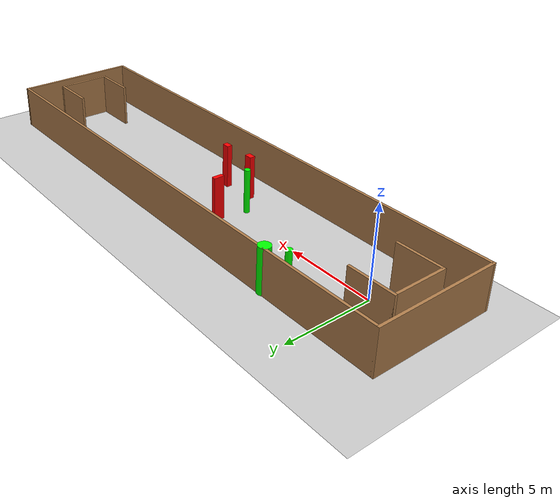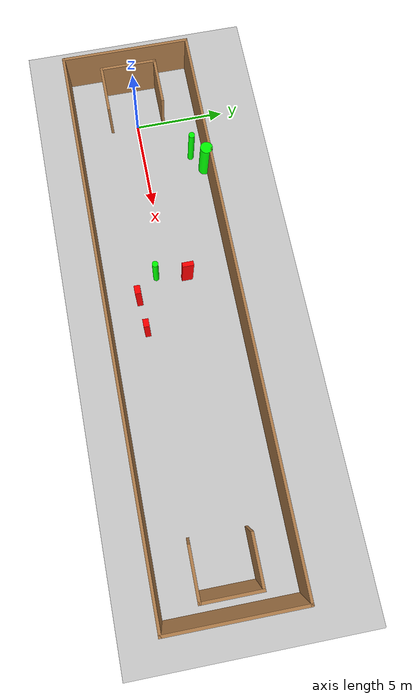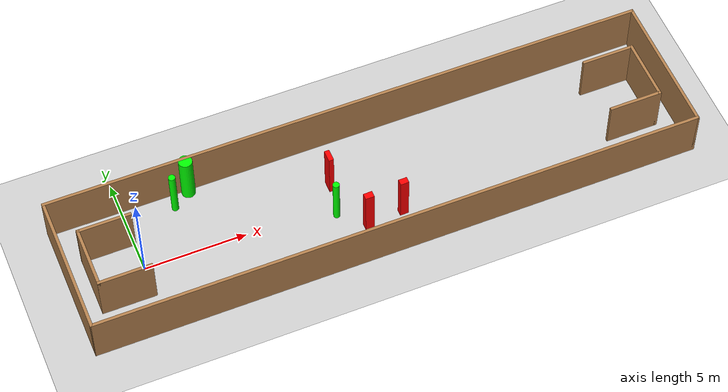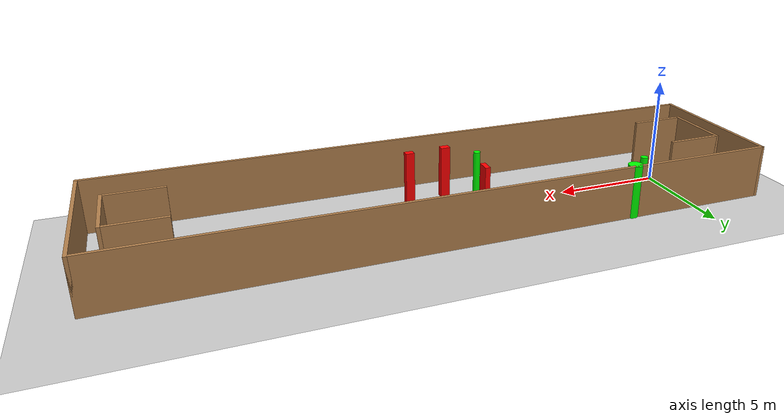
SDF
<sdf version="1.7">
 <world name="default">
  <light name="sun" type="directional">
   <pose>0 0 10 0 -0 0</pose>
   <diffuse>0.8 0.8 0.8 1</diffuse>
   <specular>0.2 0.2 0.2 1</specular>
   <attenuation>
    <range>1000</range>
    <constant>0.9</constant>
    <linear>0.01</linear>
    <quadratic>0.001</quadratic>
   </attenuation>
   <direction>-0.5 0.1 -0.9</direction>
   <spot><inner_angle>0</inner_angle><outer_angle>0</outer_angle><falloff>0</falloff></spot>
  </light>
  <model name="ground_plane">
   <static>1</static>
   <link name="link">
    <collision name="collision">
     <geometry><plane><normal>0 0 1</normal><size>100 100</size></plane></geometry>
     <surface>
      <contact><collide_bitmask>65535</collide_bitmask></contact>
      <friction><ode><mu>100</mu><mu2>50</mu2></ode></friction>
     </surface>
    </collision>
    <visual name="visual">
     <cast_shadows>0</cast_shadows>
     <geometry><plane><normal>0 0 1</normal><size>100 100</size></plane></geometry>
     <material>
      <script><uri>file://media/materials/scripts/gazebo.material</uri><name>Gazebo/Grey</name></script>
     </material>
    </visual>
   </link>
  </model>
  <gravity>0 0 -9.8</gravity>
  <magnetic_field>6e-06 2.3e-05 -4.2e-05</magnetic_field>
  <atmosphere type="adiabatic"/>
  <physics type="ode">
   <max_step_size>0.001</max_step_size>
   <real_time_factor>1</real_time_factor>
   <real_time_update_rate>1000</real_time_update_rate>
  </physics>
  <scene><ambient>0.4 0.4 0.4 1</ambient><background>0.7 0.7 0.7 1</background><shadows>1</shadows></scene>
  <spherical_coordinates>
   <surface_model>EARTH_WGS84</surface_model>
   <latitude_deg>0</latitude_deg>
   <longitude_deg>0</longitude_deg>
   <elevation>0</elevation>
   <heading_deg>0</heading_deg>
  </spherical_coordinates>
  <model name="my_base_walls">
   <link name="Wall_0">
    <collision name="Wall_0_Collision">
     <geometry><box><size>7.15 0.15 2.5</size></box></geometry>
     <pose>0 0 1.25 0 -0 0</pose>
    </collision>
    <visual name="Wall_0_Visual">
     <pose>0 0 1.25 0 -0 0</pose>
     <geometry><box><size>7.15 0.15 2.5</size></box></geometry>
     <material>
      <script><uri>file://media/materials/scripts/gazebo.material</uri><name>Gazebo/Wood</name></script>
      <ambient>1 1 1 1</ambient>
     </material>
     <meta><layer>0</layer></meta>
    </visual>
    <pose>-15 0 0 0 -0 1.5708</pose>
   </link>
   <link name="Wall_10">
    <collision name="Wall_10_Collision">
     <geometry><box><size>2.65 0.15 2.5</size></box></geometry>
     <pose>0 0 1.25 0 -0 0</pose>
    </collision>
    <visual name="Wall_10_Visual">
     <pose>0 0 1.25 0 -0 0</pose>
     <geometry><box><size>2.65 0.15 2.5</size></box></geometry>
     <material>
      <script><uri>file://media/materials/scripts/gazebo.material</uri><name>Gazebo/Wood</name></script>
      <ambient>1 1 1 1</ambient>
     </material>
     <meta><layer>0</layer></meta>
    </visual>
    <pose>-12.75 -1.5 0 0 -0 0</pose>
   </link>
   <link name="Wall_12">
    <collision name="Wall_12_Collision">
     <geometry><box><size>2.65 0.15 2.5</size></box></geometry>
     <pose>0 0 1.25 0 -0 0</pose>
    </collision>
    <visual name="Wall_12_Visual">
     <pose>0 0 1.25 0 -0 0</pose>
     <geometry><box><size>2.65 0.15 2.5</size></box></geometry>
     <material>
      <script><uri>file://media/materials/scripts/gazebo.material</uri><name>Gazebo/Wood</name></script>
      <ambient>1 1 1 1</ambient>
     </material>
     <meta><layer>0</layer></meta>
    </visual>
    <pose>-12.75 1.5 0 0 -0 0</pose>
   </link>
   <link name="Wall_14">
    <collision name="Wall_14_Collision">
     <geometry><box><size>3.15 0.15 2.5</size></box></geometry>
     <pose>0 0 1.25 0 -0 0</pose>
    </collision>
    <visual name="Wall_14_Visual">
     <pose>0 0 1.25 0 -0 0</pose>
     <geometry><box><size>3.15 0.15 2.5</size></box></geometry>
     <material>
      <script><uri>file://media/materials/scripts/gazebo.material</uri><name>Gazebo/Wood</name></script>
      <ambient>1 1 1 1</ambient>
     </material>
     <meta><layer>0</layer></meta>
    </visual>
    <pose>14 0 0 0 -0 -1.5708</pose>
   </link>
   <link name="Wall_15">
    <collision name="Wall_15_Collision">
     <geometry><box><size>2.65 0.15 2.5</size></box></geometry>
     <pose>0 0 1.25 0 -0 0</pose>
    </collision>
    <visual name="Wall_15_Visual">
     <pose>0 0 1.25 0 -0 0</pose>
     <geometry><box><size>2.65 0.15 2.5</size></box></geometry>
     <material>
      <script><uri>file://media/materials/scripts/gazebo.material</uri><name>Gazebo/Wood</name></script>
      <ambient>1 1 1 1</ambient>
     </material>
     <meta><layer>0</layer></meta>
    </visual>
    <pose>12.75 -1.5 0 0 -0 3.14159</pose>
   </link>
   <link name="Wall_17">
    <collision name="Wall_17_Collision">
     <geometry><box><size>2.65 0.15 2.5</size></box></geometry>
     <pose>0 0 1.25 0 -0 0</pose>
    </collision>
    <visual name="Wall_17_Visual">
     <pose>0 0 1.25 0 -0 0</pose>
     <geometry><box><size>2.65 0.15 2.5</size></box></geometry>
     <material>
      <script><uri>file://media/materials/scripts/gazebo.material</uri><name>Gazebo/Wood</name></script>
      <ambient>1 1 1 1</ambient>
     </material>
     <meta><layer>0</layer></meta>
    </visual>
    <pose>12.75 1.5 0 0 -0 3.14159</pose>
   </link>
   <link name="Wall_2">
    <collision name="Wall_2_Collision">
     <geometry><box><size>30.15 0.15 2.5</size></box></geometry>
     <pose>0 0 1.25 0 -0 0</pose>
    </collision>
    <visual name="Wall_2_Visual">
     <pose>0 0 1.25 0 -0 0</pose>
     <geometry><box><size>30.15 0.15 2.5</size></box></geometry>
     <material>
      <script><uri>file://media/materials/scripts/gazebo.material</uri><name>Gazebo/Wood</name></script>
      <ambient>1 1 1 1</ambient>
     </material>
     <meta><layer>0</layer></meta>
    </visual>
    <pose>-0 -3.5 0 0 -0 0</pose>
   </link>
   <link name="Wall_4">
    <collision name="Wall_4_Collision">
     <geometry><box><size>30.15 0.15 2.5</size></box></geometry>
     <pose>0 0 1.25 0 -0 0</pose>
    </collision>
    <visual name="Wall_4_Visual">
     <pose>0 0 1.25 0 -0 0</pose>
     <geometry><box><size>30.15 0.15 2.5</size></box></geometry>
     <material>
      <script><uri>file://media/materials/scripts/gazebo.material</uri><name>Gazebo/Wood</name></script>
      <ambient>1 1 1 1</ambient>
     </material>
     <meta><layer>0</layer></meta>
    </visual>
    <pose>-0 3.5 0 0 -0 0</pose>
   </link>
   <link name="Wall_6">
    <collision name="Wall_6_Collision">
     <geometry><box><size>7.15 0.15 2.5</size></box></geometry>
     <pose>0 0 1.25 0 -0 0</pose>
    </collision>
    <visual name="Wall_6_Visual">
     <pose>0 0 1.25 0 -0 0</pose>
     <geometry><box><size>7.15 0.15 2.5</size></box></geometry>
     <material>
      <script><uri>file://media/materials/scripts/gazebo.material</uri><name>Gazebo/Wood</name></script>
      <ambient>1 1 1 1</ambient>
     </material>
     <meta><layer>0</layer></meta>
    </visual>
    <pose>15 0 0 0 -0 -1.5708</pose>
   </link>
   <link name="Wall_9">
    <collision name="Wall_9_Collision">
     <geometry><box><size>3.15 0.15 2.5</size></box></geometry>
     <pose>0 0 1.25 0 -0 0</pose>
    </collision>
    <visual name="Wall_9_Visual">
     <pose>0 0 1.25 0 -0 0</pose>
     <geometry><box><size>3.15 0.15 2.5</size></box></geometry>
     <material>
      <script><uri>file://media/materials/scripts/gazebo.material</uri><name>Gazebo/Wood</name></script>
      <ambient>1 1 1 1</ambient>
     </material>
     <meta><layer>0</layer></meta>
    </visual>
    <pose>-14 0 0 0 -0 -1.5708</pose>
   </link>
   <static>1</static>
   <pose>11.5 0 0 0 -0 0</pose>
  </model>
  <model name="cylinder1">
   <static>1</static>
   <link name="link">
    <inertial>
     <mass>1</mass>
     <inertia><ixx>0.5</ixx><ixy>0</ixy><ixz>0</ixz><iyy>0.5</iyy><iyz>0</iyz><izz>1</izz></inertia>
    </inertial>
    <collision name="collision">
     <geometry><cylinder><radius>0.33563237401895735</radius><length>2.5</length></cylinder></geometry>
    </collision>
    <visual name="visual">
     <geometry><cylinder><radius>0.33563237401895735</radius><length>2.5</length></cylinder></geometry>
     <material>
      <ambient>0 1 0 1</ambient>
      <diffuse>0 1 0 1</diffuse>
      <specular>0.1 0.1 0.1 1</specular>
      <emissive>0 0 0 0</emissive>
     </material>
    </visual>
   </link>
   <pose>3.3361649855971276 3.3115011169548696 1.25 0 0 0</pose>
  </model>
  <model name="cylinder2">
   <static>1</static>
   <link name="link">
    <inertial>
     <mass>1</mass>
     <inertia><ixx>0.5</ixx><ixy>0</ixy><ixz>0</ixz><iyy>0.5</iyy><iyz>0</iyz><izz>1</izz></inertia>
    </inertial>
    <collision name="collision">
     <geometry><cylinder><radius>0.16165518591185674</radius><length>2.5</length></cylinder></geometry>
    </collision>
    <visual name="visual">
     <geometry><cylinder><radius>0.16165518591185674</radius><length>2.5</length></cylinder></geometry>
     <material>
      <ambient>0 1 0 1</ambient>
      <diffuse>0 1 0 1</diffuse>
      <specular>0.1 0.1 0.1 1</specular>
      <emissive>0 0 0 0</emissive>
     </material>
    </visual>
   </link>
   <pose>9.319349185273722 -0.5971650201979428 1.25 0 0 0</pose>
  </model>
  <model name="cylinder3">
   <static>1</static>
   <link name="link">
    <inertial>
     <mass>1</mass>
     <inertia><ixx>0.5</ixx><ixy>0</ixy><ixz>0</ixz><iyy>0.5</iyy><iyz>0</iyz><izz>1</izz></inertia>
    </inertial>
    <collision name="collision">
     <geometry><cylinder><radius>0.1678275307256146</radius><length>2.5</length></cylinder></geometry>
    </collision>
    <visual name="visual">
     <geometry><cylinder><radius>0.1678275307256146</radius><length>2.5</length></cylinder></geometry>
     <material>
      <ambient>0 1 0 1</ambient>
      <diffuse>0 1 0 1</diffuse>
      <specular>0.1 0.1 0.1 1</specular>
      <emissive>0 0 0 0</emissive>
     </material>
    </visual>
   </link>
   <pose>2.450720917669896 2.6773762597007327 1.25 0 0 0</pose>
  </model>
  <model name="box1">
   <static>1</static>
   <link name="link">
    <inertial>
     <mass>1</mass>
     <inertia><ixx>0.083</ixx><ixy>0</ixy><ixz>0</ixz><iyy>0.083</iyy><iyz>0</iyz><izz>0.083</izz></inertia>
    </inertial>
    <collision name="collision">
     <geometry><box><size>0.2401709102486057 0.5979126994078139 2.5</size></box></geometry>
    </collision>
    <visual name="visual">
     <geometry><box><size>0.2401709102486057 0.5979126994078139 2.5</size></box></geometry>
     <material>
      <ambient>1 0 0 1</ambient>
      <diffuse>1 0 0 1</diffuse>
      <specular>0.1 0.1 0.1 1</specular>
      <emissive>0 0 0 0</emissive>
     </material>
    </visual>
    <sensor name="my_contact" type="contact">
     <contact><collision>box_collision</collision><topic>__default_topic__</topic></contact>
    </sensor>
   </link>
   <pose>9.631023096956067 1.065988566072697 1.25 0 0 0</pose>
  </model>
  <model name="box2">
   <static>1</static>
   <link name="link">
    <inertial>
     <mass>1</mass>
     <inertia><ixx>0.083</ixx><ixy>0</ixy><ixz>0</ixz><iyy>0.083</iyy><iyz>0</iyz><izz>0.083</izz></inertia>
    </inertial>
    <collision name="collision">
     <geometry><box><size>0.4184489150616374 0.3032757423838183 2.5</size></box></geometry>
    </collision>
    <visual name="visual">
     <geometry><box><size>0.4184489150616374 0.3032757423838183 2.5</size></box></geometry>
     <material>
      <ambient>1 0 0 1</ambient>
      <diffuse>1 0 0 1</diffuse>
      <specular>0.1 0.1 0.1 1</specular>
      <emissive>0 0 0 0</emissive>
     </material>
    </visual>
    <sensor name="my_contact" type="contact">
     <contact><collision>box_collision</collision><topic>__default_topic__</topic></contact>
    </sensor>
   </link>
   <pose>12.28199696194096 -1.598254369624358 1.25 0 0 0</pose>
  </model>
  <model name="box3">
   <static>1</static>
   <link name="link">
    <inertial>
     <mass>1</mass>
     <inertia><ixx>0.083</ixx><ixy>0</ixy><ixz>0</ixz><iyy>0.083</iyy><iyz>0</iyz><izz>0.083</izz></inertia>
    </inertial>
    <collision name="collision">
     <geometry><box><size>0.44006002756990953 0.3161770756075535 2.5</size></box></geometry>
    </collision>
    <visual name="visual">
     <geometry><box><size>0.44006002756990953 0.3161770756075535 2.5</size></box></geometry>
     <material>
      <ambient>1 0 0 1</ambient>
      <diffuse>1 0 0 1</diffuse>
      <specular>0.1 0.1 0.1 1</specular>
      <emissive>0 0 0 0</emissive>
     </material>
    </visual>
    <sensor name="my_contact" type="contact">
     <contact><collision>box_collision</collision><topic>__default_topic__</topic></contact>
    </sensor>
   </link>
   <pose>10.490753324575989 -1.7229347492823237 1.25 0 0 0</pose>
  </model>
 </world>
</sdf>
